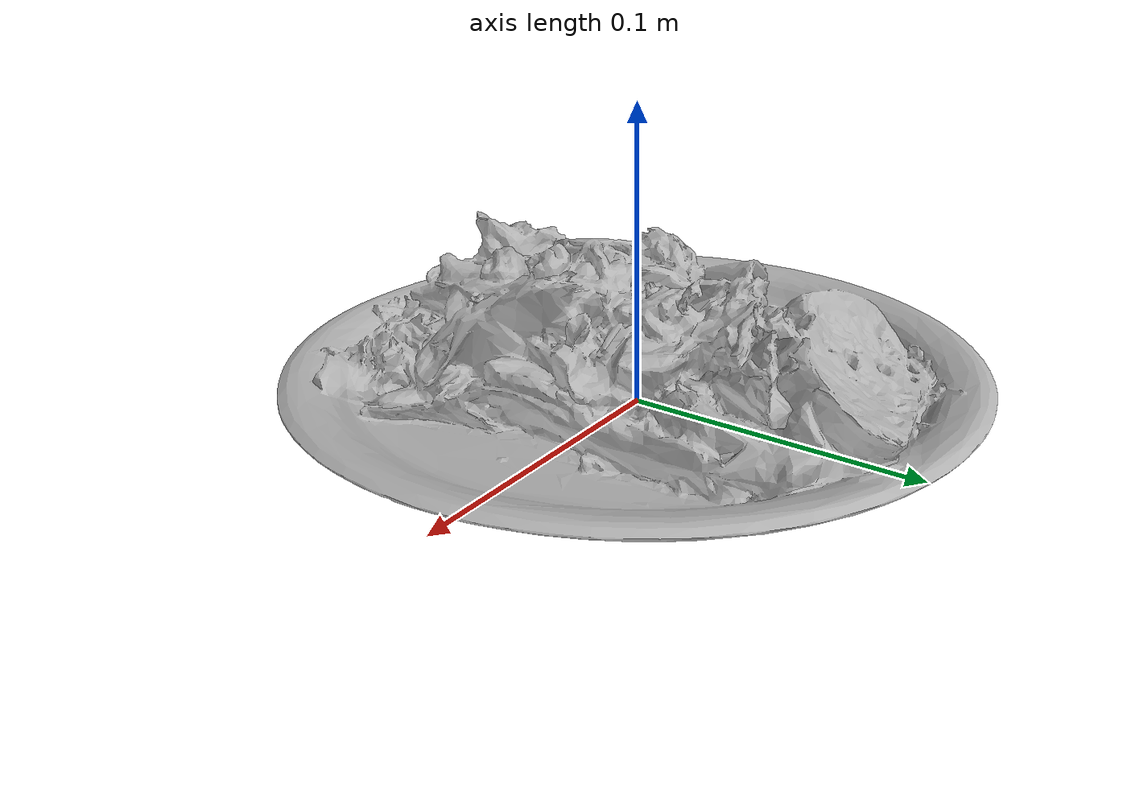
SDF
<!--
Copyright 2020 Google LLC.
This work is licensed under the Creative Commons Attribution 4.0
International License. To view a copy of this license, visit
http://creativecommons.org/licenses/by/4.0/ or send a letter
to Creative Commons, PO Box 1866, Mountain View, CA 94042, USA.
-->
<?xml version="1.0" ?>
<sdf version="1.6">
  <model name="ProSport_Harness_to_Booster_Seat">
    <static>true</static>
    <link name="link_0">
      <visual name="visual">
        <geometry>
          <mesh>
            <uri>meshes/model.obj</uri>
          </mesh>
        </geometry>
      </visual>
      <collision name="collision_0">
        <geometry>
          <mesh>
            <uri>meshes/model.obj</uri>
          </mesh>
        </geometry>
      </collision>
    </link>
  </model>
</sdf>
